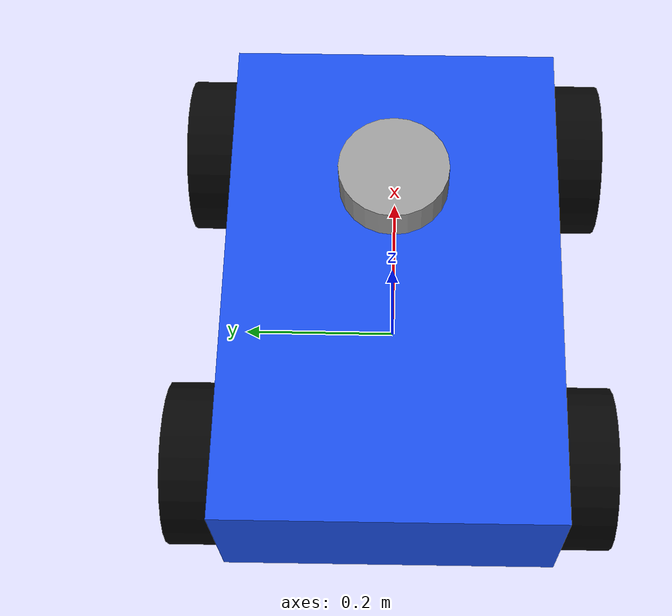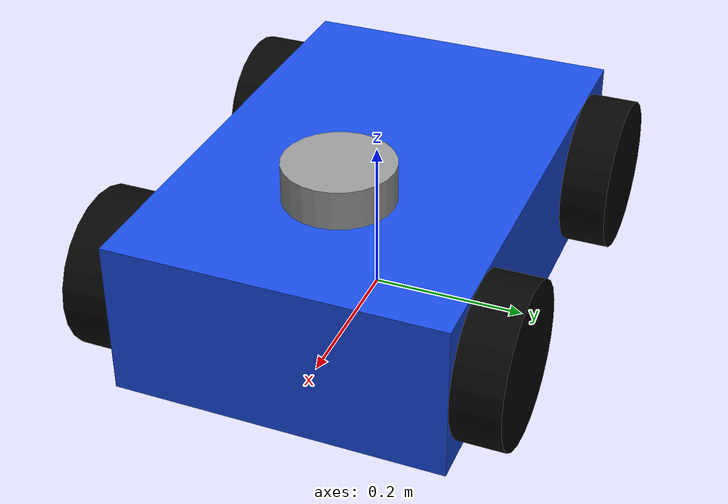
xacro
<?xml version="1.0"?>
<!--
  Xacro 会先展开变量和宏，再生成标准 URDF。
  使用 robot_name 作为 link 前缀，避免多个机器人同时出现时 TF 重名。
-->
<robot xmlns:xacro="http://www.ros.org/wiki/xacro" name="fishbot_xacro">
  <!-- 插件定义放在 plugins/，这里负责把插件挂到当前机器人上。 -->
  <xacro:include filename="plugins/gazebo_control_plugin.xacro"/>
  <xacro:include filename="plugins/gazebo_sensor_plugin.xacro"/>

  <xacro:arg name="robot_name" default="fishbot"/>
  <xacro:arg name="controllers_file" default="$(find fishbot_xacro_description)/config/controllers.yaml"/>
  <!-- prefix 是后续所有 frame 名称的统一前缀。 -->
  <xacro:property name="prefix" value="$(arg robot_name)"/>

  <!-- 集中管理可调尺寸；修改这些参数即可整体改变机器人。 -->
  <xacro:property name="base_length" value="0.64"/>
  <xacro:property name="base_width" value="0.42"/>
  <xacro:property name="base_height" value="0.20"/>
  <xacro:property name="base_mass" value="5.0"/>
  <!-- 四轮直径为 0.20 m；轮心高度与半径相同，轮底正好落在 z=0。 -->
  <xacro:property name="wheel_radius" value="0.10"/>
  <xacro:property name="wheel_width" value="0.06"/>
  <xacro:property name="wheel_mass" value="0.4"/>
  <!-- 前后轮沿 X 方向的中心距位置。 -->
  <xacro:property name="wheel_x_offset" value="${base_length / 2.0 - wheel_radius}"/>
  <!-- 左右轮中心到机器人中心线的距离，轮内侧与底盘侧面对齐。 -->
  <xacro:property name="wheel_y_offset" value="${base_width / 2.0 + wheel_width / 2.0}"/>
  <xacro:property name="laser_radius" value="0.07"/>
  <xacro:property name="laser_height" value="0.05"/>

  <material name="blue">
    <color rgba="0.1 0.3 0.9 1.0"/>
  </material>
  <material name="black">
    <color rgba="0.02 0.02 0.02 1.0"/>
  </material>
  <material name="gray">
    <color rgba="0.6 0.6 0.6 1.0"/>
  </material>

  <!-- 可复用的惯量宏，避免每个部件重复手写惯量公式。 -->
  <xacro:macro name="box_inertia" params="mass x y z">
    <inertia ixx="${mass * (y * y + z * z) / 12.0}"
             ixy="0.0" ixz="0.0"
             iyy="${mass * (x * x + z * z) / 12.0}"
             iyz="0.0"
             izz="${mass * (x * x + y * y) / 12.0}"/>
  </xacro:macro>

  <!-- 圆柱默认沿局部 Z 轴；轮子通过 rpy 旋转到 Y 轴。 -->
  <xacro:macro name="cylinder_inertia" params="mass radius length">
    <inertia ixx="${mass * (3 * radius * radius + length * length) / 12.0}"
             ixy="0.0" ixz="0.0"
             iyy="${mass * (3 * radius * radius + length * length) / 12.0}"
             iyz="0.0"
             izz="${mass * radius * radius / 2.0}"/>
  </xacro:macro>

  <!--
    一个宏生成任意位置的轮子。
    position 用 front/rear 区分前后，side 用 left/right 区分左右。
  -->
  <xacro:macro name="wheel" params="position side x y">
    <link name="${prefix}_${position}_${side}_wheel_link">
      <visual>
        <origin xyz="0 0 0" rpy="1.5708 0 0"/>
        <geometry>
          <cylinder radius="${wheel_radius}" length="${wheel_width}"/>
        </geometry>
        <material name="black"/>
      </visual>
      <collision>
        <origin xyz="0 0 0" rpy="1.5708 0 0"/>
        <geometry>
          <cylinder radius="${wheel_radius}" length="${wheel_width}"/>
        </geometry>
      </collision>
      <inertial>
        <origin xyz="0 0 0" rpy="1.5708 0 0"/>
        <mass value="${wheel_mass}"/>
        <xacro:cylinder_inertia mass="${wheel_mass}" radius="${wheel_radius}" length="${wheel_width}"/>
      </inertial>
    </link>
    <joint name="${prefix}_${position}_${side}_wheel_joint" type="continuous">
      <parent link="${prefix}_base_link"/>
      <child link="${prefix}_${position}_${side}_wheel_link"/>
      <!-- x/y 由调用者给出；轮心高度等于半径，刚好接触地面。 -->
      <origin xyz="${x} ${y} ${wheel_radius}" rpy="0 0 0"/>
      <axis xyz="0 1 0"/>
    </joint>
  </xacro:macro>

  <!-- 底盘是机器人树的根 link。 -->
  <link name="${prefix}_base_link">
    <visual>
      <origin xyz="0 0 ${base_height / 2.0}" rpy="0 0 0"/>
      <geometry>
        <box size="${base_length} ${base_width} ${base_height}"/>
      </geometry>
      <material name="blue"/>
    </visual>
    <collision>
      <origin xyz="0 0 ${base_height / 2.0}" rpy="0 0 0"/>
      <geometry>
        <box size="${base_length} ${base_width} ${base_height}"/>
      </geometry>
    </collision>
    <inertial>
      <origin xyz="0 0 ${base_height / 2.0}" rpy="0 0 0"/>
      <mass value="${base_mass}"/>
      <xacro:box_inertia mass="${base_mass}" x="${base_length}" y="${base_width}" z="${base_height}"/>
    </inertial>
  </link>

  <!-- 调用同一个轮子宏四次，消除四个轮子的重复代码。 -->
  <xacro:wheel position="front" side="left"  x="${wheel_x_offset}"  y="${wheel_y_offset}"/>
  <xacro:wheel position="front" side="right" x="${wheel_x_offset}"  y="${-wheel_y_offset}"/>
  <xacro:wheel position="rear"  side="left"  x="${-wheel_x_offset}" y="${wheel_y_offset}"/>
  <xacro:wheel position="rear"  side="right" x="${-wheel_x_offset}" y="${-wheel_y_offset}"/>

  <!-- 顶部雷达固定在底盘上，导航时它会在 Gazebo 中发布 /scan。 -->
  <link name="${prefix}_laser_link">
    <visual>
      <origin xyz="0 0 ${laser_height / 2.0}" rpy="0 0 0"/>
      <geometry><cylinder radius="${laser_radius}" length="${laser_height}"/></geometry>
      <material name="gray"/>
    </visual>
    <collision>
      <origin xyz="0 0 ${laser_height / 2.0}" rpy="0 0 0"/>
      <geometry><cylinder radius="${laser_radius}" length="${laser_height}"/></geometry>
    </collision>
    <inertial>
      <mass value="0.25"/>
      <xacro:cylinder_inertia mass="0.25" radius="${laser_radius}" length="${laser_height}"/>
    </inertial>
  </link>
  <joint name="${prefix}_laser_joint" type="fixed">
    <parent link="${prefix}_base_link"/>
    <child link="${prefix}_laser_link"/>
    <!-- 雷达底部与底盘顶部接触，因此关节高度使用 base_height。 -->
    <origin xyz="0.12 0 ${base_height}" rpy="0 0 0"/>
  </joint>

  <!-- 通过宏挂载底盘控制插件。定义在 plugins/gazebo_control_plugin.xacro。 -->
  <xacro:gazebo_control_plugin
    prefix="${prefix}"
    wheel_radius="${wheel_radius}"
    front_left_joint="${prefix}_front_left_wheel_joint"
    rear_left_joint="${prefix}_rear_left_wheel_joint"
    front_right_joint="${prefix}_front_right_wheel_joint"
    rear_right_joint="${prefix}_rear_right_wheel_joint"
    controllers_file="$(arg controllers_file)"/>

  <!-- 通过宏挂载 2D 激光雷达插件。定义在 plugins/gazebo_sensor_plugin.xacro。 -->
  <xacro:gazebo_lidar_plugin
    link_name="${prefix}_laser_link"
    laser_height="${laser_height}"/>
</robot>
